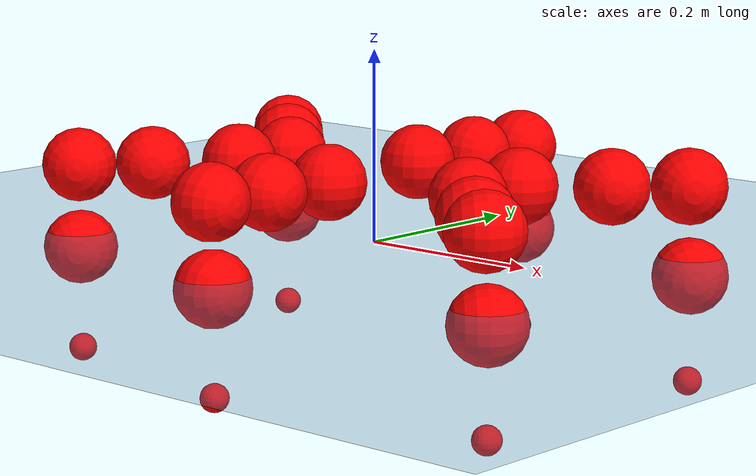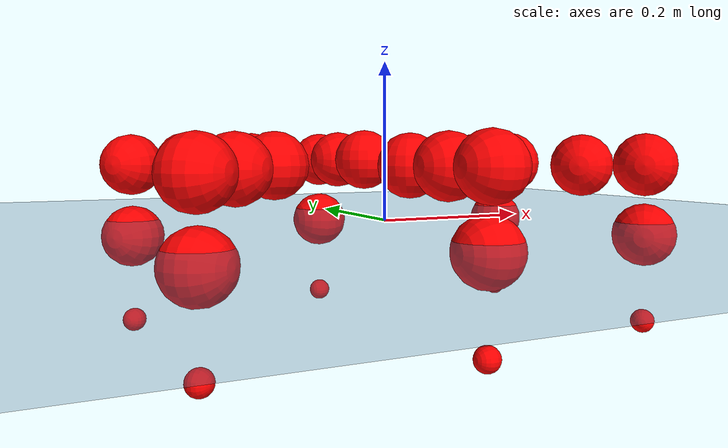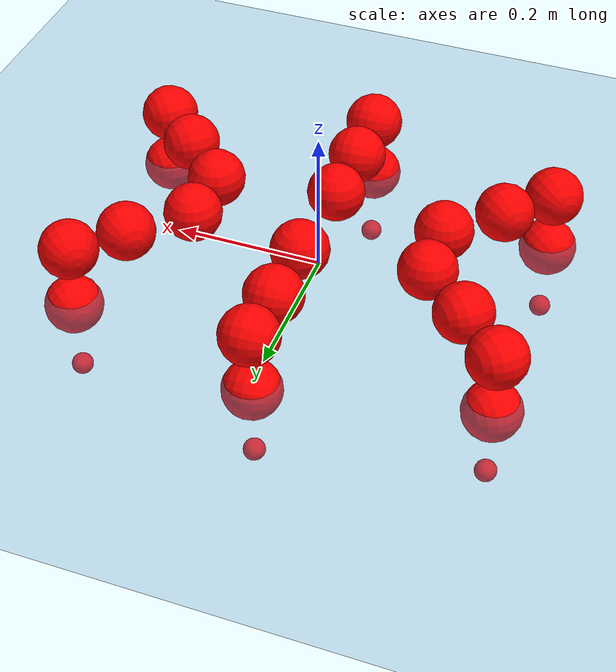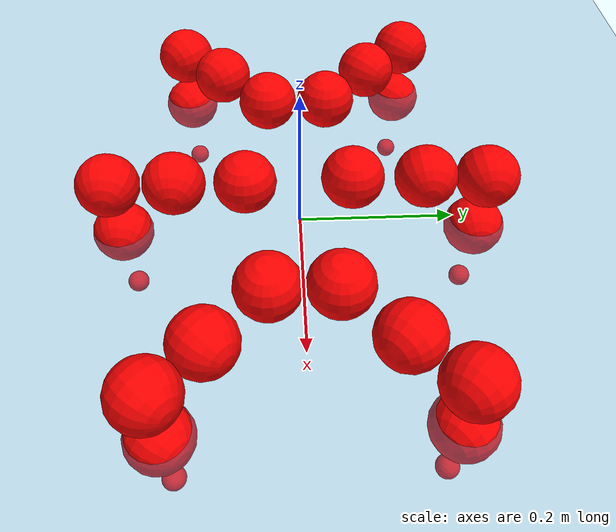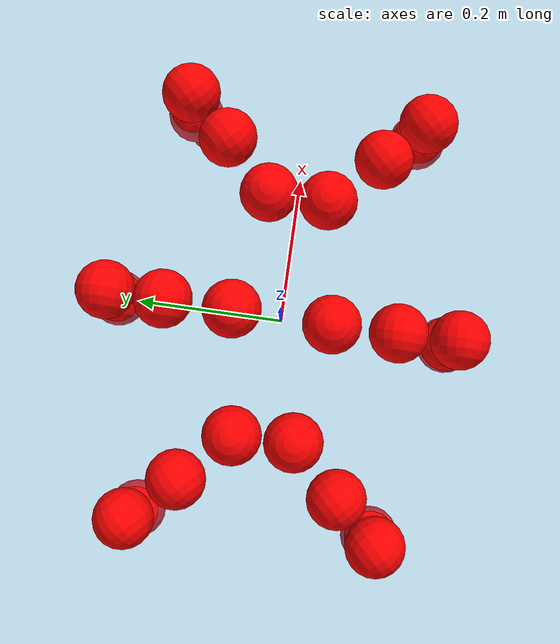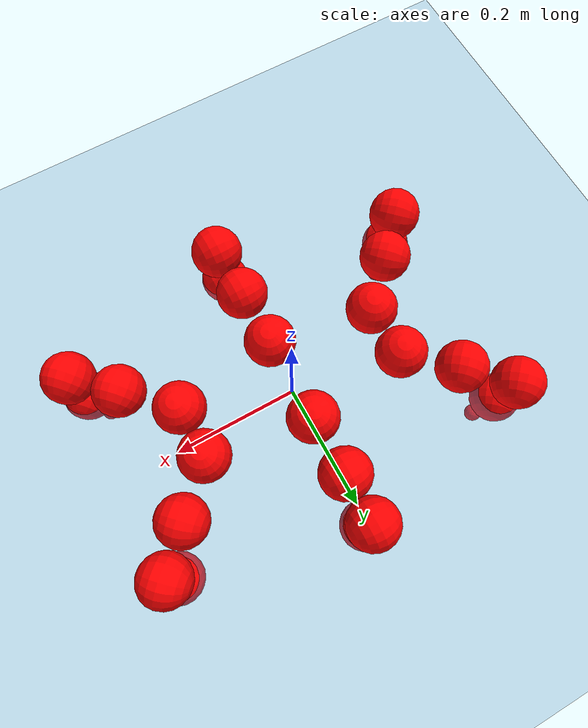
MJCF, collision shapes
<mujoco model="Golem">
  <compiler angle="radian" assetdir="assets" balanceinertia="true" inertiafromgeom="false"/>

  <option timestep="0.005" density="1.2" viscosity="2e-05"/>

  <size nkey="1"/>

  <visual>
    <quality shadowsize="8192"/>
    <map shadowclip="0.5"/>
  </visual>

  <default>
    <default class="/">
      <joint armature="0.01" damping="0.01" frictionloss="0.01"/>
      <geom contype="0" conaffinity="0" group="1" solref="-1000 -80"/>
      <site size="0.01 0.005 0.005" group="5"/>
      <general forcelimited="true" biastype="affine" gainprm="25" biasprm="0 -25 -0.5"/>
      <default class="visual">
        <geom type="mesh" group="2"/>
      </default>
      <default class="collision">
        <geom group="3"/>
      </default>
      <default class="foot">
        <geom size="0.01 0 0" condim="6" group="4" priority="1" solimp="0.015 1 0.01"/>
      </default>
      <default class="reward_collision_sphere">
        <geom group="5" rgba="1 0 0 1"/>
      </default>
    </default>
  </default>

  <asset>
    <texture type="skybox" colorspace="auto" name="//unnamed_texture_0" builtin="gradient" rgb1="0.95 0.95 0.95" rgb2="0.95 0.95 0.95" width="100" height="600"/>
    <texture type="2d" colorspace="auto" name="texplane" builtin="checker" rgb1="0.345 0.575 0.748" rgb2="0.345 0.575 0.748" markrgb="1 1 1" width="512" height="512"/>
    <material name="MatPlane" class="/" texture="texplane" texuniform="true" texrepeat="2 2" specular="0.9"/>
    <mesh name="body" class="/" file="body.stl" scale="0.001 0.001 0.001"/>
    <mesh name="coxa" class="/" file="coxa.stl" scale="0.001 0.001 0.001"/>
    <mesh name="femur" class="/" file="femur.stl" scale="0.001 0.001 0.001"/>
    <mesh name="tibia" class="/" file="tibia.stl" scale="0.001 0.001 0.001"/>
    <mesh name="tarsus" class="/" file="tarsus.stl" scale="0.001 0.001 0.001"/>
  </asset>

  <worldbody>
    <geom name="floor" class="/" size="100 100 0.125" type="plane" group="0" material="MatPlane"/>
    <light name="toplight_shadow" class="/" pos="0 0 5" dir="0.0990148 0.0990148 -0.990148" type="directional" ambient="0.04 0.04 0.04" diffuse="0.55 0.55 0.55" specular="0.12 0.12 0.12"/>
    <light name="toplight_fill" class="/" pos="0 0 5" dir="0.0990148 0.0990148 -0.990148" type="directional" castshadow="false" ambient="0.04 0.04 0.04" diffuse="0.3 0.3 0.3" specular="0.08 0.08 0.08"/>
    <body name="trunk" pos="-0.000668273 -3.45603e-05 -0.00267036" quat="1 5.00504e-05 0.00010352 -0.000145601">
      <inertial pos="0.00157297 -0.000224454 -0.000535203" quat="0.999935 0.0109466 -0.00200505 0.0025875" mass="3.58586" diaginertia="0.0105393 0.0022545 0.0232997"/>
      <joint name="//unnamed_joint_0" type="free"/>
      <geom name="//unnamed_geom_1" class="/" pos="0 0 0.0757909" quat="1 0 0 0" type="mesh" rgba="0.9 0.9 0.9 1" mesh="body"/>
      <site name="imu" class="/" pos="0.131571 0.00209361 0.114316" size="0.00979822"/>
      <camera name="track" class="/" pos="0 -1.47642 0" quat="0.707107 0.707107 0 0" mode="trackcom"/>
      <camera name="ego_camera" class="/" pos="0.132213 0 0.118423" quat="-0.5 -0.5 0.5 0.5"/>
      <body name="coxa_RR" pos="-0.180013 -0.0602283 0.0748358" quat="0.382514 0.000242921 -3.6813e-05 -0.92395">
        <inertial pos="-0.00068751 -0.00266333 0.000208558" quat="0.999986 0.00397105 -0.00332688 -0.00141228" mass="0.181781" diaginertia="0.0102738 0.00219989 0.0224504"/>
        <joint name="coxa_joint_RR" class="/" pos="0 0 0" axis="0.00709574 0.000782207 -0.999975" range="-3.14294 3.09866" armature="0.00913918" damping="0.00897921" frictionloss="0.00943627"/>
        <geom name="//unnamed_geom_2" class="/" type="mesh" rgba="0.2 0.2 0.2 1" mesh="coxa"/>
        <geom name="//unnamed_geom_3" class="reward_collision_sphere" size="0.0391929" pos="-0.0305108 0 0"/>
        <body name="femur_RR" pos="0.060362 0.000640993 -0.00149182" quat="0.500002 -0.500346 0.499529 0.500123">
          <inertial pos="0.00116623 0.00120978 -0.0012117" quat="1 -0.000118527 -8.44954e-05 -8.53592e-05" mass="0.187656" diaginertia="0.0109004 0.00220837 0.0233314"/>
          <joint name="femur_joint_RR" class="/" pos="0 0 0" axis="0.000534193 0.000386736 -1" range="-3.15904 3.08409" armature="0.00875337" damping="0" frictionloss="0.0108876"/>
          <geom name="//unnamed_geom_4" class="/" type="mesh" rgba="0.9 0.9 0.9 1" mesh="femur"/>
          <geom name="//unnamed_geom_5" class="reward_collision_sphere" size="0.0391929"/>
          <body name="tibia_RR" pos="0.000899162 -0.0774052 0.00298234" quat="-0.000408999 1 6.00239e-05 -0.000180158">
            <inertial pos="-0.00263839 -0.0015404 -6.67397e-05" quat="0.999927 -0.0118563 -0.000342262 0.00222012" mass="0.188066" diaginertia="0.0106809 0.00222718 0.0238386"/>
            <joint name="tibia_joint_RR" class="/" pos="0 0 0" axis="-0.001322 -0.00321849 0.999994" range="-3.19415 3.13626" armature="0.00874673" damping="0" frictionloss="0.00957"/>
            <geom name="//unnamed_geom_6" class="/" type="mesh" rgba="0.2 0.2 0.2 1" mesh="tibia"/>
            <geom name="//unnamed_geom_7" class="reward_collision_sphere" size="0.0391929"/>
            <body name="tarsus_RR" pos="0.0881161 0.000204525 -0.0010094" quat="1 -0.00011964 0.000242054 0.000376452">
              <inertial pos="0.0592428 0.00307469 -0.00216265" quat="0.499646 0.500038 0.50024 0.500075" mass="0.186491" diaginertia="0.0106681 0.00219292 0.0229344"/>
              <joint name="tarsus_joint_RR" class="/" pos="0 0 0" axis="0.000259968 -0.00406867 0.999992" range="-3.15822 3.14366" armature="0.0110621" damping="0.00439018" frictionloss="0.0110347"/>
              <geom name="//unnamed_geom_8" class="/" type="mesh" rgba="0.9 0.9 0.9 1" mesh="tarsus"/>
              <geom name="foot_1" class="foot" size="0.00887978" pos="0.113907 0 0" quat="0 -0.707107 0 0.707107"/>
              <geom name="//unnamed_geom_10" class="reward_collision_sphere" size="0.0391929"/>
              <geom name="//unnamed_geom_11" class="reward_collision_sphere" size="0.0146973" pos="0.10933 0 0"/>
              <site name="foot_1" class="foot" pos="0.113907 0 0" quat="0 -0.707107 0 0.707107" size="0.00979822"/>
            </body>
          </body>
        </body>
      </body>
      <body name="coxa_RM" pos="0.00018578 -0.0980178 0.073755" quat="0.706595 0.000632324 0.000911727 -0.707617">
        <inertial pos="-0.00264727 -8.6601e-05 -0.000248507" quat="0.999991 0.00275482 -0.00329632 0.000490054" mass="0.184344" diaginertia="0.0106982 0.00214539 0.0234504"/>
        <joint name="coxa_joint_RM" class="/" pos="0 0 0" axis="-0.00139403 0.000392363 -0.999999" range="-3.19078 3.14188" armature="0.00994967" damping="0.00798558" frictionloss="0.00990232"/>
        <geom name="//unnamed_geom_12" class="/" type="mesh" rgba="0.2 0.2 0.2 1" mesh="coxa"/>
        <geom name="//unnamed_geom_13" class="reward_collision_sphere" size="0.0391929" pos="-0.0305108 0 0"/>
        <body name="femur_RM" pos="0.0571586 0.000700497 0.00139106" quat="0.499668 -0.499449 0.499727 0.501154">
          <inertial pos="0.000539897 -0.000337177 0.000106132" quat="0.999906 0.0102168 -0.00909811 0.000907283" mass="0.194168" diaginertia="0.0112098 0.00219218 0.0241005"/>
          <joint name="femur_joint_RM" class="/" pos="0 0 0" axis="-0.000727548 -0.00044513 -1" range="-3.15084 3.14122" armature="0.0094898" damping="0.00762483" frictionloss="0.00974424"/>
          <geom name="//unnamed_geom_14" class="/" type="mesh" rgba="0.9 0.9 0.9 1" mesh="femur"/>
          <geom name="//unnamed_geom_15" class="reward_collision_sphere" size="0.0391929"/>
          <body name="tibia_RM" pos="-0.00186895 -0.0799946 0.00206236" quat="-0.000375507 1 -0.000247264 -0.000377408">
            <inertial pos="0.000342612 0.00221487 0.000456993" quat="0.999986 -0.00240835 0.0027827 -0.00371152" mass="0.193958" diaginertia="0.0113208 0.00227046 0.0244847"/>
            <joint name="tibia_joint_RM" class="/" pos="0 0 0" axis="0.00495649 0.00469916 0.999977" stiffness="0.000925056" range="-3.09739 3.09272" armature="0.0102642" damping="9.85982e-06" frictionloss="0.00988008"/>
            <geom name="//unnamed_geom_16" class="/" type="mesh" rgba="0.2 0.2 0.2 1" mesh="tibia"/>
            <geom name="//unnamed_geom_17" class="reward_collision_sphere" size="0.0391929"/>
            <body name="tarsus_RM" pos="0.0865058 -0.00279425 0.00187875" quat="0.999999 -0.000861097 -0.000749593 -0.000201873">
              <inertial pos="0.0613506 0.00294939 6.764e-05" quat="0.499704 0.500303 0.500291 0.499702" mass="0.176967" diaginertia="0.0105685 0.00210162 0.0223808"/>
              <joint name="tarsus_joint_RM" class="/" pos="0 0 0" axis="-0.00654926 -0.00245655 0.999976" range="-3.15104 3.15967" armature="0.0105099" damping="0.0026453" frictionloss="0.00989136"/>
              <geom name="//unnamed_geom_18" class="/" type="mesh" rgba="0.9 0.9 0.9 1" mesh="tarsus"/>
              <geom name="foot_2" class="foot" size="0.00986517" pos="0.113907 0 0" quat="0 -0.707107 0 0.707107"/>
              <geom name="//unnamed_geom_20" class="reward_collision_sphere" size="0.0391929"/>
              <geom name="//unnamed_geom_21" class="reward_collision_sphere" size="0.0146973" pos="0.10933 0 0"/>
              <site name="foot_2" class="foot" pos="0.113907 0 0" quat="0 -0.707107 0 0.707107" size="0.00979822"/>
            </body>
          </body>
        </body>
      </body>
      <body name="coxa_RF" pos="0.183479 -0.0620756 0.074954" quat="0.923548 0.000599346 0.000171809 -0.383482">
        <inertial pos="-0.00278227 -0.00108236 0.0027586" quat="0.999974 -0.00116369 0.00634448 0.00329397" mass="0.192315" diaginertia="0.0109336 0.00219126 0.0233643"/>
        <joint name="coxa_joint_RF" class="/" pos="0 0 0" axis="0.00295296 0.000426215 -0.999996" range="-3.17125 3.14137" armature="0.00844175" damping="0.0137286" frictionloss="0.010674"/>
        <geom name="//unnamed_geom_22" class="/" type="mesh" rgba="0.2 0.2 0.2 1" mesh="coxa"/>
        <geom name="//unnamed_geom_23" class="reward_collision_sphere" size="0.0391929" pos="-0.0305108 0 0"/>
        <body name="femur_RF" pos="0.0627416 7.96116e-05 -0.00219856" quat="0.501012 -0.499635 0.500199 0.499152">
          <inertial pos="0.00117329 -0.000866547 -0.000622998" quat="0.999992 0.00170929 0.00245261 0.00246979" mass="0.176169" diaginertia="0.0109036 0.00213894 0.022144"/>
          <joint name="femur_joint_RF" class="/" pos="0 0 0" axis="-0.000116221 0.000300359 -1" range="-3.13718 3.08359" armature="0.00872857" damping="0" frictionloss="0.00854893"/>
          <geom name="//unnamed_geom_24" class="/" type="mesh" rgba="0.9 0.9 0.9 1" mesh="femur"/>
          <geom name="//unnamed_geom_25" class="reward_collision_sphere" size="0.0391929"/>
          <body name="tibia_RF" pos="-0.00105265 -0.0769262 0.00265766" quat="5.79533e-05 1 6.95848e-06 9.88315e-05">
            <inertial pos="-0.00250289 0.000941106 -0.000211524" quat="1 -0.000184251 0.000775728 0.000258929" mass="0.182723" diaginertia="0.0102869 0.00213805 0.0226972"/>
            <joint name="tibia_joint_RF" class="/" pos="0 0 0" axis="0.00765433 0.00318377 0.999966" range="-3.10432 3.14004" armature="0.00979224" damping="0" frictionloss="0.0105575"/>
            <geom name="//unnamed_geom_26" class="/" type="mesh" rgba="0.2 0.2 0.2 1" mesh="tibia"/>
            <geom name="//unnamed_geom_27" class="reward_collision_sphere" size="0.0391929"/>
            <body name="tarsus_RF" pos="0.0880667 -5.14088e-06 -0.00274598" quat="0.999999 -0.000691216 -0.000226388 -0.000844972">
              <inertial pos="0.0585164 -0.00151278 -0.000562917" quat="0.498955 0.505729 0.50461 0.490561" mass="0.183383" diaginertia="0.0107451 0.00222503 0.0222456"/>
              <joint name="tarsus_joint_RF" class="/" pos="0 0 0" axis="-0.00767428 0.00232239 0.999968" range="-3.12268 3.13147" armature="0.00848298" damping="0" frictionloss="0.00846595"/>
              <geom name="//unnamed_geom_28" class="/" type="mesh" rgba="0.9 0.9 0.9 1" mesh="tarsus"/>
              <geom name="foot_3" class="foot" size="0.00987067" pos="0.113907 0 0" quat="0 -0.707107 0 0.707107"/>
              <geom name="//unnamed_geom_30" class="reward_collision_sphere" size="0.0391929"/>
              <geom name="//unnamed_geom_31" class="reward_collision_sphere" size="0.0146973" pos="0.10933 0 0"/>
              <site name="foot_3" class="foot" pos="0.113907 0 0" quat="0 -0.707107 0 0.707107" size="0.00979822"/>
            </body>
          </body>
        </body>
      </body>
      <body name="coxa_LR" pos="-0.182308 0.0632669 0.0734097" quat="0.382509 0.000295324 -9.67836e-05 0.923952">
        <inertial pos="0.000237965 -0.000685252 0.000597451" quat="0.999909 -0.00863685 -2.25565e-05 0.0104054" mass="0.188085" diaginertia="0.0109087 0.00225837 0.0232743"/>
        <joint name="coxa_joint_LR" class="/" pos="0 0 0" axis="-0.00874033 0.0003865 -0.999962" stiffness="0.00628795" range="-3.14943 3.15453" armature="0.0111008" damping="0.0128759" frictionloss="0.00972758"/>
        <geom name="//unnamed_geom_32" class="/" type="mesh" rgba="0.2 0.2 0.2 1" mesh="coxa"/>
        <geom name="//unnamed_geom_33" class="reward_collision_sphere" size="0.0391929" pos="-0.0305108 0 0"/>
        <body name="femur_LR" pos="0.0598308 0.00120736 0.00178087" quat="0.499242 -0.500233 0.49987 0.500653">
          <inertial pos="-0.00270917 -0.00274355 0.00258805" quat="1 0.000321065 0.000309191 1.36305e-05" mass="0.197393" diaginertia="0.0111938 0.00230053 0.0237352"/>
          <joint name="femur_joint_LR" class="/" pos="0 0 0" axis="0.0125363 -0.00724309 0.999895" range="-3.18481 3.09013" armature="0.010943" damping="0" frictionloss="0.00847796"/>
          <geom name="//unnamed_geom_34" class="/" type="mesh" rgba="0.9 0.9 0.9 1" mesh="femur"/>
          <geom name="//unnamed_geom_35" class="reward_collision_sphere" size="0.0391929"/>
          <body name="tibia_LR" pos="0.00225182 -0.0833841 -0.000889298" quat="-0.000183293 1 3.2084e-05 -7.59033e-05">
            <inertial pos="-0.000277193 -0.00270528 6.02316e-05" quat="0.999985 -0.000460567 -0.00277012 0.00476991" mass="0.177147" diaginertia="0.0103497 0.00216566 0.0218764"/>
            <joint name="tibia_joint_LR" class="/" pos="0 0 0" axis="-0.0118472 -0.00617985 -0.999911" range="-3.1451 3.08359" armature="0.0098561" damping="0" frictionloss="0.0108704"/>
            <geom name="//unnamed_geom_36" class="/" type="mesh" rgba="0.2 0.2 0.2 1" mesh="tibia"/>
            <geom name="//unnamed_geom_37" class="reward_collision_sphere" size="0.0391929"/>
            <body name="tarsus_LR" pos="0.0925752 -0.00167539 -0.00153665" quat="0.999999 -0.000679174 0.000547079 -0.000544637">
              <inertial pos="0.0606968 0.00115212 -0.00238439" quat="0.499628 0.501031 0.500059 0.49928" mass="0.183273" diaginertia="0.010932 0.00223255 0.0229621"/>
              <joint name="tarsus_joint_LR" class="/" pos="0 0 0" axis="0.00155057 0.00546454 -0.999984" range="-3.19171 3.15274" armature="0.00845166" damping="0.0290276" frictionloss="0.00962487"/>
              <geom name="//unnamed_geom_38" class="/" type="mesh" rgba="0.9 0.9 0.9 1" mesh="tarsus"/>
              <geom name="foot_4" class="foot" size="0.00961903" pos="0.113907 0 0" quat="0.707107 0 -0.707107 0"/>
              <geom name="//unnamed_geom_40" class="reward_collision_sphere" size="0.0391929"/>
              <geom name="//unnamed_geom_41" class="reward_collision_sphere" size="0.0146973" pos="0.10933 0 0"/>
              <site name="foot_4" class="foot" pos="0.113907 0 0" quat="0.707107 0 -0.707107 0" size="0.00979822"/>
            </body>
          </body>
        </body>
      </body>
      <body name="coxa_LM" pos="0.00219374 0.0957592 0.078892" quat="0.707044 -4.18331e-05 0.000126332 0.70717">
        <inertial pos="0.00221473 -0.000224794 0.000668082" quat="0.999983 -2.28761e-05 0.000581227 -0.00585261" mass="0.182005" diaginertia="0.0112546 0.00217744 0.0231032"/>
        <joint name="coxa_joint_LM" class="/" pos="0 0 0" axis="-0.00898828 0.00896431 -0.999919" range="-3.12651 3.19032" armature="0.0097887" damping="0.00360818" frictionloss="0.00961247"/>
        <geom name="//unnamed_geom_42" class="/" type="mesh" rgba="0.2 0.2 0.2 1" mesh="coxa"/>
        <geom name="//unnamed_geom_43" class="reward_collision_sphere" size="0.0391929" pos="-0.0305108 0 0"/>
        <body name="femur_LM" pos="0.0603863 -0.000402429 -0.0012025" quat="0.500094 -0.50094 0.50004 0.498923">
          <inertial pos="0.0024259 0.00101094 -0.00219657" quat="0.999996 0.00010863 -0.00162739 -0.00220834" mass="0.200828" diaginertia="0.0113757 0.00226904 0.0248106"/>
          <joint name="femur_joint_LM" class="/" pos="0 0 0" axis="-0.0105 -0.00367717 0.999938" stiffness="0.0113309" range="-3.19527 3.08415" armature="0.00967759" damping="0.0061758" frictionloss="0.0108685"/>
          <geom name="//unnamed_geom_44" class="/" type="mesh" rgba="0.9 0.9 0.9 1" mesh="femur"/>
          <geom name="//unnamed_geom_45" class="reward_collision_sphere" size="0.0391929"/>
          <body name="tibia_LM" pos="0.00140086 -0.0765052 -0.00162332" quat="-0.000123452 1 0.00012274 0.000182677">
            <inertial pos="0.00231081 -0.000478844 0.000571921" quat="1 -3.62388e-05 -2.54657e-05 -1.19481e-05" mass="0.192822" diaginertia="0.0110373 0.00216486 0.0242578"/>
            <joint name="tibia_joint_LM" class="/" pos="0 0 0" axis="-0.00146785 0.0100189 -0.999949" range="-3.14707 3.13627" armature="0.00844016" damping="0" frictionloss="0.00953643"/>
            <geom name="//unnamed_geom_46" class="/" type="mesh" rgba="0.2 0.2 0.2 1" mesh="tibia"/>
            <geom name="//unnamed_geom_47" class="reward_collision_sphere" size="0.0391929"/>
            <body name="tarsus_LM" pos="0.0915953 -0.000597038 -0.00104519" quat="1 5.52868e-05 0.000242273 0.000242851">
              <inertial pos="0.0616711 0.000185284 0.00260805" quat="0.495998 0.499989 0.501133 0.502855" mass="0.186796" diaginertia="0.0105455 0.00226822 0.0232889"/>
              <joint name="tarsus_joint_LM" class="/" pos="0 0 0" axis="0.00150171 -0.00619837 -0.99998" range="-3.13305 3.14806" armature="0.00999138" damping="0.0104559" frictionloss="0.00976721"/>
              <geom name="//unnamed_geom_48" class="/" type="mesh" rgba="0.9 0.9 0.9 1" mesh="tarsus"/>
              <geom name="foot_5" class="foot" size="0.0089496" pos="0.113907 0 0" quat="0.707107 0 -0.707107 0"/>
              <geom name="//unnamed_geom_50" class="reward_collision_sphere" size="0.0391929"/>
              <geom name="//unnamed_geom_51" class="reward_collision_sphere" size="0.0146973" pos="0.10933 0 0"/>
              <site name="foot_5" class="foot" pos="0.113907 0 0" quat="0.707107 0 -0.707107 0" size="0.00979822"/>
            </body>
          </body>
        </body>
      </body>
      <body name="coxa_LF" pos="0.183628 0.0602163 0.0750403" quat="0.924178 0.000777625 0.000808188 0.381959">
        <inertial pos="0.000138283 0.000149954 0.00269717" quat="0.999993 0.000120379 -0.00320805 -0.00189467" mass="0.186741" diaginertia="0.0110932 0.00212121 0.0232503"/>
        <joint name="coxa_joint_LF" class="/" pos="0 0 0" axis="-0.0125391 0.00934004 -0.999878" range="-3.16279 3.123" armature="0.0094606" damping="0.0178927" frictionloss="0.00849648"/>
        <geom name="//unnamed_geom_52" class="/" type="mesh" rgba="0.2 0.2 0.2 1" mesh="coxa"/>
        <geom name="//unnamed_geom_53" class="reward_collision_sphere" size="0.0391929" pos="-0.0305108 0 0"/>
        <body name="femur_LF" pos="0.0621057 -0.00100259 -0.000753759" quat="0.50013 -0.499889 0.499947 0.500035">
          <inertial pos="-0.000370499 0.000123066 0.00277801" quat="0.999941 -0.00467028 0.00795085 0.00578528" mass="0.193067" diaginertia="0.0105105 0.00221018 0.0231652"/>
          <joint name="femur_joint_LF" class="/" pos="0 0 0" axis="-0.0098589 0.00968774 0.999904" stiffness="0.00285646" range="-3.15733 3.13776" armature="0.00973459" damping="0.00904853" frictionloss="0.0111447"/>
          <geom name="//unnamed_geom_54" class="/" type="mesh" rgba="0.9 0.9 0.9 1" mesh="femur"/>
          <geom name="//unnamed_geom_55" class="reward_collision_sphere" size="0.0391929"/>
          <body name="tibia_LF" pos="0.000680972 -0.078583 0.00274407" quat="0.00110321 0.999999 0.000644773 0.000310112">
            <inertial pos="-0.000985669 0.000521359 -0.00256977" quat="0.999907 0.00630342 0.0119945 0.00120818" mass="0.19696" diaginertia="0.0112218 0.00219424 0.023279"/>
            <joint name="tibia_joint_LF" class="/" pos="0 0 0" axis="0.000101069 -0.000854502 -1" range="-3.09212 3.153" armature="0.0101177" damping="0.016433" frictionloss="0.00975135"/>
            <geom name="//unnamed_geom_56" class="/" type="mesh" rgba="0.2 0.2 0.2 1" mesh="tibia"/>
            <geom name="//unnamed_geom_57" class="reward_collision_sphere" size="0.0391929"/>
            <body name="tarsus_LF" pos="0.0920743 0.00308416 -0.00121903" quat="1 0.000278124 -0.000366726 0.000252649">
              <inertial pos="0.0587493 0.000470388 0.000521598" quat="0.499714 0.499579 0.500891 0.499814" mass="0.179311" diaginertia="0.0104203 0.00208519 0.023316"/>
              <joint name="tarsus_joint_LF" class="/" pos="0 0 0" axis="-0.0139799 -0.00465733 -0.999891" range="-3.13337 3.0859" armature="0.0112461" damping="0.0146477" frictionloss="0.0110223"/>
              <geom name="//unnamed_geom_58" class="/" type="mesh" rgba="0.9 0.9 0.9 1" mesh="tarsus"/>
              <geom name="foot_6" class="foot" size="0.00944805" pos="0.113907 0 0" quat="0.707107 0 -0.707107 0"/>
              <geom name="//unnamed_geom_60" class="reward_collision_sphere" size="0.0391929"/>
              <geom name="//unnamed_geom_61" class="reward_collision_sphere" size="0.0146973" pos="0.10933 0 0"/>
              <site name="foot_6" class="foot" pos="0.113907 0 0" quat="0.707107 0 -0.707107 0" size="0.00979822"/>
            </body>
          </body>
        </body>
      </body>
    </body>
  </worldbody>

  <contact>
    <pair class="/" geom1="floor" geom2="foot_1" name="//unnamed_contact_0"/>
    <pair class="/" geom1="floor" geom2="foot_2" name="//unnamed_contact_1"/>
    <pair class="/" geom1="floor" geom2="foot_3" name="//unnamed_contact_2"/>
    <pair class="/" geom1="floor" geom2="foot_4" name="//unnamed_contact_3"/>
    <pair class="/" geom1="floor" geom2="foot_5" name="//unnamed_contact_4"/>
    <pair class="/" geom1="floor" geom2="foot_6" name="//unnamed_contact_5"/>
  </contact>

  <actuator>
    <general name="coxa_joint_RR" class="/" joint="coxa_joint_RR" forcerange="-7.64332 7.64332" gainprm="23.2128" biasprm="0 -23.2128 -0.503704"/>
    <general name="femur_joint_RR" class="/" joint="femur_joint_RR" forcerange="-7.79339 7.79339" gainprm="23.2128" biasprm="0 -23.2128 -0.503704"/>
    <general name="tibia_joint_RR" class="/" joint="tibia_joint_RR" forcerange="-6.4848 6.4848" gainprm="23.2128" biasprm="0 -23.2128 -0.503704"/>
    <general name="tarsus_joint_RR" class="/" joint="tarsus_joint_RR" forcerange="-6.44265 6.44265" gainprm="23.2128" biasprm="0 -23.2128 -0.503704"/>
    <general name="coxa_joint_RM" class="/" joint="coxa_joint_RM" forcerange="-6.41378 6.41378" gainprm="23.2128" biasprm="0 -23.2128 -0.503704"/>
    <general name="femur_joint_RM" class="/" joint="femur_joint_RM" forcerange="-6.86331 6.86331" gainprm="23.2128" biasprm="0 -23.2128 -0.503704"/>
    <general name="tibia_joint_RM" class="/" joint="tibia_joint_RM" forcerange="-7.04626 7.04626" gainprm="23.2128" biasprm="0 -23.2128 -0.503704"/>
    <general name="tarsus_joint_RM" class="/" joint="tarsus_joint_RM" forcerange="-7.08426 7.08426" gainprm="23.2128" biasprm="0 -23.2128 -0.503704"/>
    <general name="coxa_joint_RF" class="/" joint="coxa_joint_RF" forcerange="-7.03456 7.03456" gainprm="23.2128" biasprm="0 -23.2128 -0.503704"/>
    <general name="femur_joint_RF" class="/" joint="femur_joint_RF" forcerange="-7.80596 7.80596" gainprm="23.2128" biasprm="0 -23.2128 -0.503704"/>
    <general name="tibia_joint_RF" class="/" joint="tibia_joint_RF" forcerange="-7.88592 7.88592" gainprm="23.2128" biasprm="0 -23.2128 -0.503704"/>
    <general name="tarsus_joint_RF" class="/" joint="tarsus_joint_RF" forcerange="-7.89352 7.89352" gainprm="23.2128" biasprm="0 -23.2128 -0.503704"/>
    <general name="coxa_joint_LR" class="/" joint="coxa_joint_LR" forcerange="-7.12443 7.12443" gainprm="23.2128" biasprm="0 -23.2128 -0.503704"/>
    <general name="femur_joint_LR" class="/" joint="femur_joint_LR" forcerange="-7.27433 7.27433" gainprm="23.2128" biasprm="0 -23.2128 -0.503704"/>
    <general name="tibia_joint_LR" class="/" joint="tibia_joint_LR" forcerange="-7.83256 7.83256" gainprm="23.2128" biasprm="0 -23.2128 -0.503704"/>
    <general name="tarsus_joint_LR" class="/" joint="tarsus_joint_LR" forcerange="-7.88444 7.88444" gainprm="23.2128" biasprm="0 -23.2128 -0.503704"/>
    <general name="coxa_joint_LM" class="/" joint="coxa_joint_LM" forcerange="-7.20209 7.20209" gainprm="23.2128" biasprm="0 -23.2128 -0.503704"/>
    <general name="femur_joint_LM" class="/" joint="femur_joint_LM" forcerange="-7.32341 7.32341" gainprm="23.2128" biasprm="0 -23.2128 -0.503704"/>
    <general name="tibia_joint_LM" class="/" joint="tibia_joint_LM" forcerange="-7.11444 7.11444" gainprm="23.2128" biasprm="0 -23.2128 -0.503704"/>
    <general name="tarsus_joint_LM" class="/" joint="tarsus_joint_LM" forcerange="-7.1021 7.1021" gainprm="23.2128" biasprm="0 -23.2128 -0.503704"/>
    <general name="coxa_joint_LF" class="/" joint="coxa_joint_LF" forcerange="-7.24247 7.24247" gainprm="23.2128" biasprm="0 -23.2128 -0.503704"/>
    <general name="femur_joint_LF" class="/" joint="femur_joint_LF" forcerange="-7.89079 7.89079" gainprm="23.2128" biasprm="0 -23.2128 -0.503704"/>
    <general name="tibia_joint_LF" class="/" joint="tibia_joint_LF" forcerange="-7.87332 7.87332" gainprm="23.2128" biasprm="0 -23.2128 -0.503704"/>
    <general name="tarsus_joint_LF" class="/" joint="tarsus_joint_LF" forcerange="-7.01049 7.01049" gainprm="23.2128" biasprm="0 -23.2128 -0.503704"/>
  </actuator>

  <sensor>
    <gyro site="imu" name="imu_angular_velocity"/>
    <velocimeter site="imu" name="imu_linear_velocity"/>
    <framelinvel objtype="site" objname="foot_1" name="foot_1_global_linear_velocity"/>
    <framelinvel objtype="site" objname="foot_2" name="foot_2_global_linear_velocity"/>
    <framelinvel objtype="site" objname="foot_3" name="foot_3_global_linear_velocity"/>
    <framelinvel objtype="site" objname="foot_4" name="foot_4_global_linear_velocity"/>
    <framelinvel objtype="site" objname="foot_5" name="foot_5_global_linear_velocity"/>
    <framelinvel objtype="site" objname="foot_6" name="foot_6_global_linear_velocity"/>
  </sensor>

  <keyframe>
    <key name="home" qpos="0 0 0.1457 1 0 0 0 0 0 0 0 0 0 0 0 0 0 0 0 0 0 0 0 0 0 0 0 0 0 0 0"/>
  </keyframe>
</mujoco>
